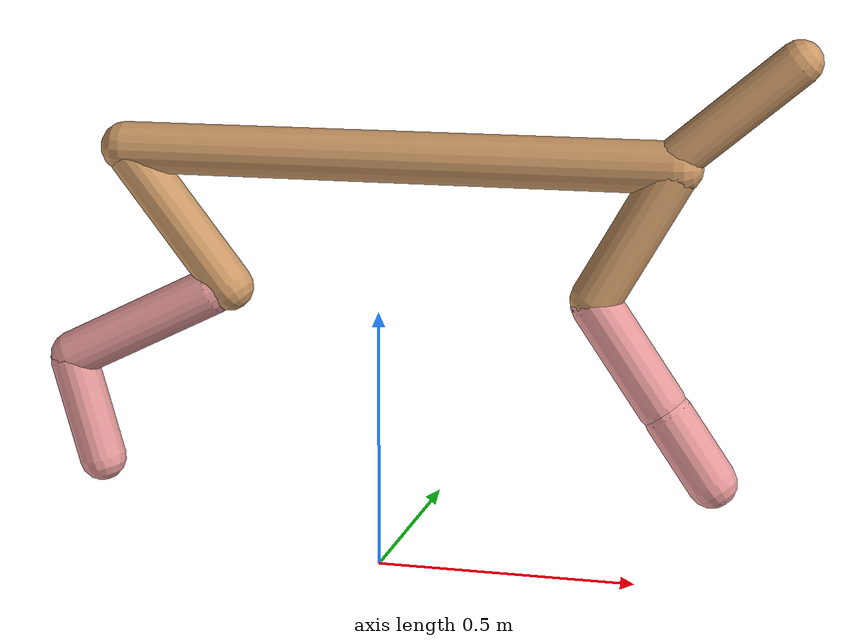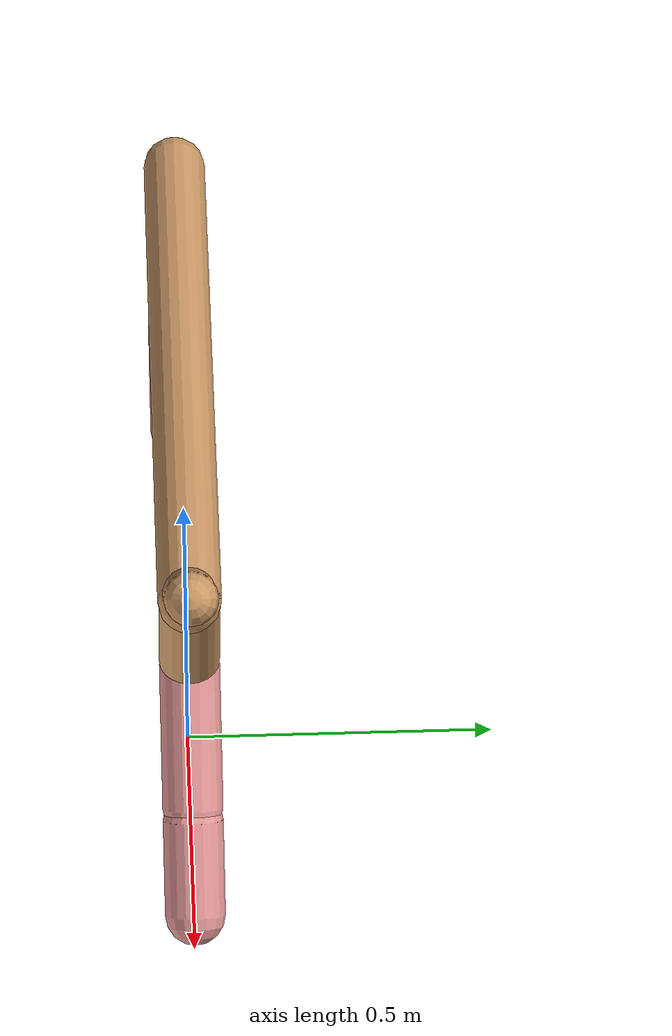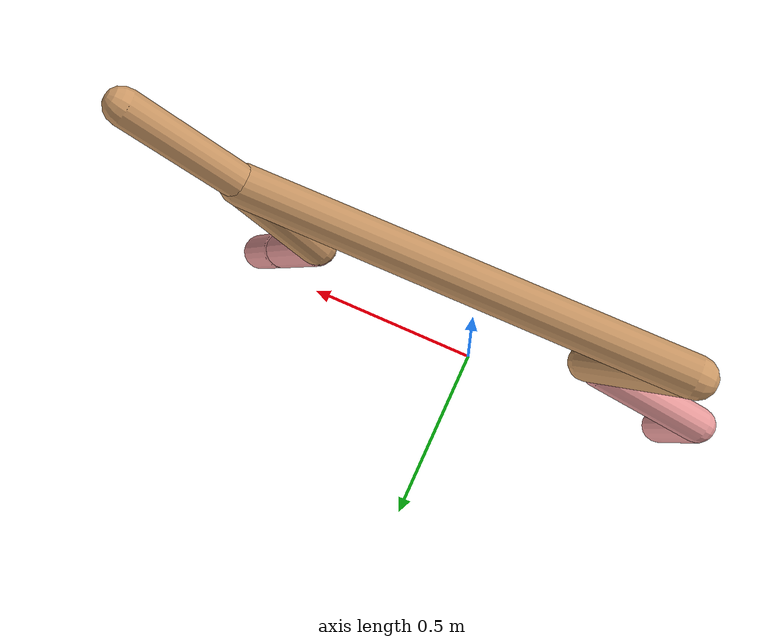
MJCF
<mujoco model="cheetah">
  <compiler angle="radian" coordinate="local" inertiafromgeom="true" settotalmass="14" />
  <default>
    <joint armature=".1" damping=".01" limited="true" solimplimit="0 .8 .03" solreflimit=".02 1" stiffness="8" />
    <geom conaffinity="0" condim="3" contype="1" friction="0.8 .1 .1" rgba="0.8 0.6 .4 1" solimp="0.0 0.8 0.01" solref="0.02 1" />
    <motor ctrllimited="true" ctrlrange="-1 1" />
  </default>
  <size nstack="300000" nuser_geom="1" />
  <option gravity="0 0 -9.81" timestep="0.01" />
  <worldbody>
    <body name="torso" pos="0.0 0.0 0.7999726593843615">
      <joint armature="0" axis="1 0 0" damping="0" limited="false" name="ignorex" pos="0 0 0" stiffness="0" type="slide" />
      <joint armature="0" axis="0 0 1" damping="0" limited="false" name="ignorez" pos="0 0 0" stiffness="0" type="slide" />
      <joint armature="0" axis="0 1 0" damping="0" limited="false" name="ignorey" pos="0 0 0" stiffness="0" type="hinge" />
      <geom fromto="-0.5 0.0 0.0 0.5615455073964922 0.0 0.0" name="torso" size="0.04930178638076968" type="capsule" />
      <geom axisangle="0 1 0 .87" name="head" pos="0.6615455073964921 0.0 0.1" size="0.04161462755548724 0.15" type="capsule" />

      <body name="bthigh" pos="-.5 0 0">
        <joint axis="0 1 0" damping="6" name="bthigh" pos="0 0 0" range="-.52 1.05" stiffness="240" type="hinge" />
        <geom axisangle="0 1 0 -3.8" name="bthigh" pos="0.1074901600860372 0.0 -0.13973720811184837" size="0.04634721990946113 0.15728477594129867" type="capsule" />
        <body name="bshin" pos="0.1749803201720744 0.0 -0.2694744162236967">
          <joint axis="0 1 0" damping="4.5" name="bshin" pos="0 0 0" range="-.785 .785" stiffness="180" type="hinge" />
          <geom axisangle="0 1 0 -2.03" name="bshin" pos="-0.15136672859024736 0.0 -0.07568336429512368" rgba="0.9 0.6 0.6 1" size="0.04634721990946113 0.16270838890479172" type="capsule" />
          <body name="bfoot" pos="-0.3027334571804947 0.0 -0.15136672859024736">
            <joint axis="0 1 0" damping="3" name="bfoot" pos="0 0 0" range="-.4 .785" stiffness="120" type="hinge" />
            <geom axisangle="0 1 0 -.27" name="bfoot" pos="0.032353098333050404 0.0 -0.10460835127686298" rgba="0.9 0.6 0.6 1" size="0.04634721990946113 0.10196392371366948" type="capsule" />
            <inertial mass="10" />
          </body>
        </body>
      </body>
      <body name="fthigh" pos="0.5615455073964921 0.0 0.0">
        <joint axis="0 1 0" damping="4.5" name="fthigh" pos="0 0 0" range="-1.5 0.8" stiffness="180" type="hinge" />
        <geom axisangle="0 1 0 .52" name="fthigh" pos="-0.07532788357042836 0.0 -0.1291335146921629" size="0.04743196344458192 0.14357390344064083" type="capsule" />
        <body name="fshin" pos="-0.1506557671408567 0.0 -0.2582670293843258">
          <joint axis="0 1 0" damping="3" name="fshin" pos="0 0 0" range="-1.2 1.1" stiffness="120" type="hinge" />
          <geom axisangle="0 1 0 -.6" name="fshin" pos="0.06993411715538572 0.0 -0.09683185452284176" rgba="0.9 0.6 0.6 1" size="0.04743196344458192 0.11442732153915736" type="capsule" />
          <body name="ffoot" pos="0.13986823431077144 0.0 -0.19366370904568353">
            <joint axis="0 1 0" damping="1.5" name="ffoot" pos="0 0 0" range="-3.1 -0.3" stiffness="60" type="hinge" />
            <geom axisangle="0 1 0 -.6" name="ffoot" pos="0.04800943081860128 0.0 -0.07468133682893534" rgba="0.9 0.6 0.6 1" size="0.04743196344458192 0.07556521233717939" type="capsule" />
            <inertial mass="10" />
          </body>
        </body>
      </body>
    </body>
  </worldbody>
  <actuator>
    <motor gear="120" joint="bthigh" name="bthigh" />
    <motor gear="90" joint="bshin" name="bshin" />
    <motor gear="60" joint="bfoot" name="bfoot" />
    <motor gear="120" joint="fthigh" name="fthigh" />
    <motor gear="60" joint="fshin" name="fshin" />
    <motor gear="30" joint="ffoot" name="ffoot" />
  </actuator>
</mujoco>
